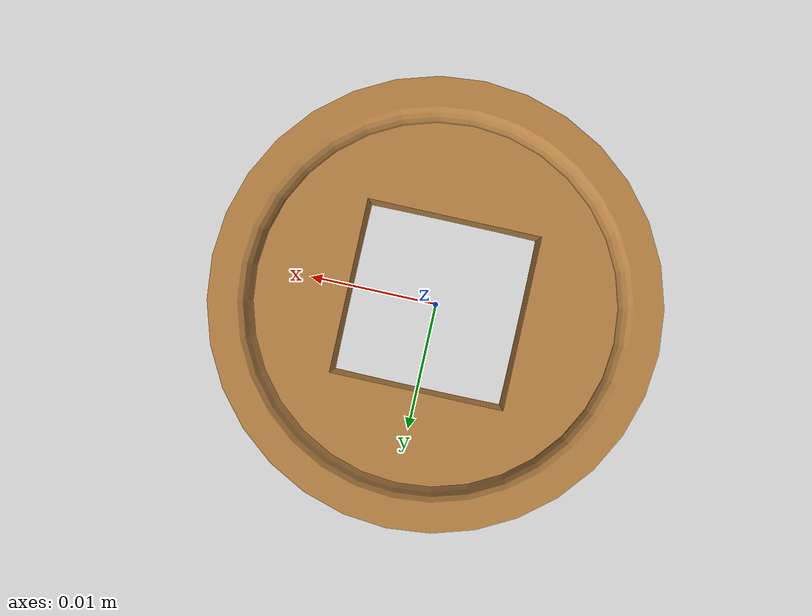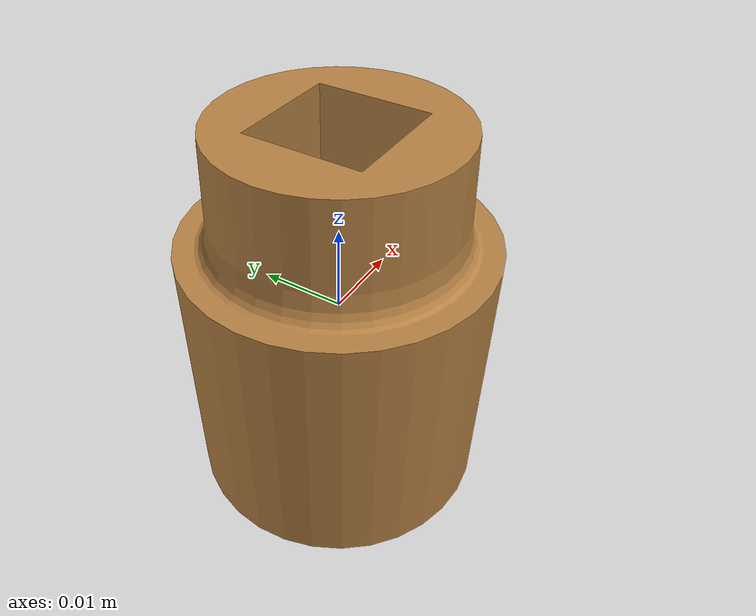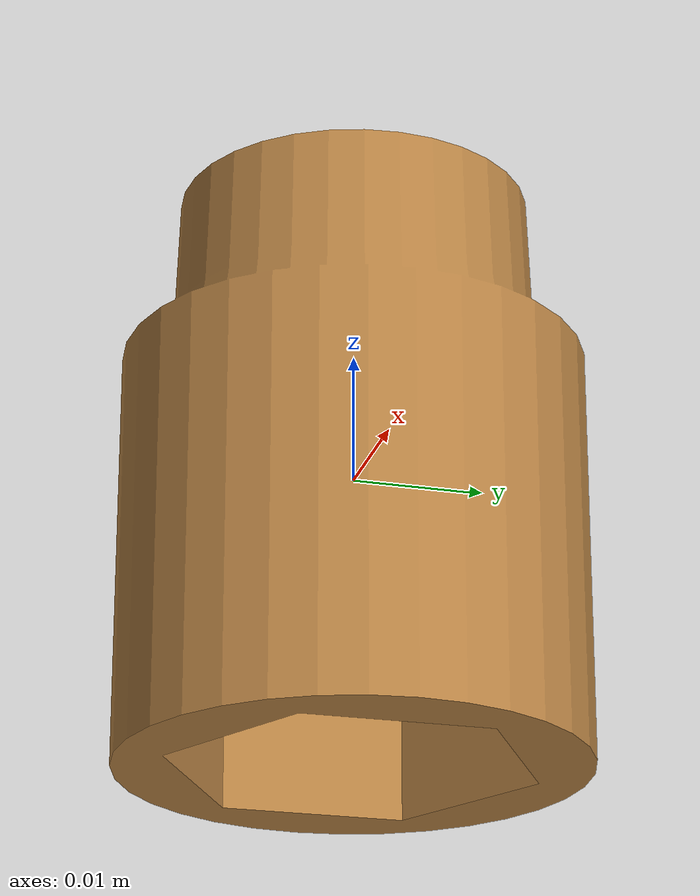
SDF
<?xml version="1.0" ?>
<sdf version="1.4">
	<model name='socket'>
		<pose> 0 0 0 0 0 0 </pose>
		<link name="link">
			<inertial>
				<mass> 0.1 </mass>
				<pose> 0 0 0.00021547 0 0 0 </pose>
				<inertia>
					<ixx> 0.000024082 </ixx>
					<ixy> 0 </ixy>
					<ixz> 0 </ixz>
					<iyy> 0.000024082 </iyy>
					<iyz> 0 </iyz>
					<izz> 0.00001900477 </izz>
				</inertia>
			</inertial>

			<collision name="collision">
				<geometry>
					<mesh>
						<uri> /home/kevin/research/gazebo/Arm_Control3_ar6axis/model/socket_simple/meshes/socket_0_045m_simple.dae </uri>
						<scale> 1 1 1 </scale>
					</mesh>
				</geometry>
				<surface>
					<bounce>
						<restitution_coefficient> 0.1 </restitution_coefficient>
					</bounce>
					<friction>
						<ode>
							<mu> 0.9 </mu>
							<mu2> 0.9 </mu2>
						</ode>
					</friction>

				</surface>
			</collision>

			<visual name="visual">
				<material>
					<ambient> 0.71 0.506 0.2627 1 </ambient>
					<diffuse> 0.71 0.506 0.2627 1 </diffuse>
				</material>
				<geometry>
					<mesh>
						<uri> /home/kevin/research/gazebo/Arm_Control3_ar6axis/model/socket_simple/meshes/socket_0_045m_simple.dae </uri>
						<scale> 1 1 1 </scale>
					</mesh>
				</geometry>
			</visual>

		</link>
	</model>
</sdf>
